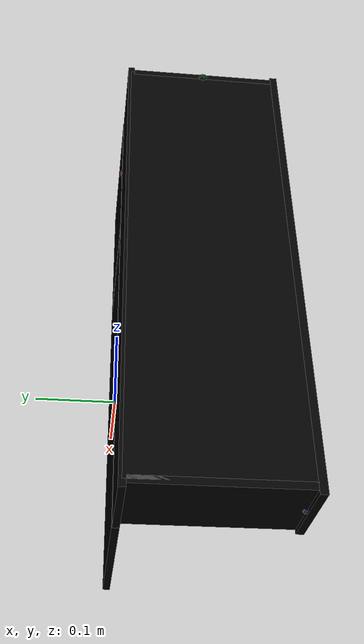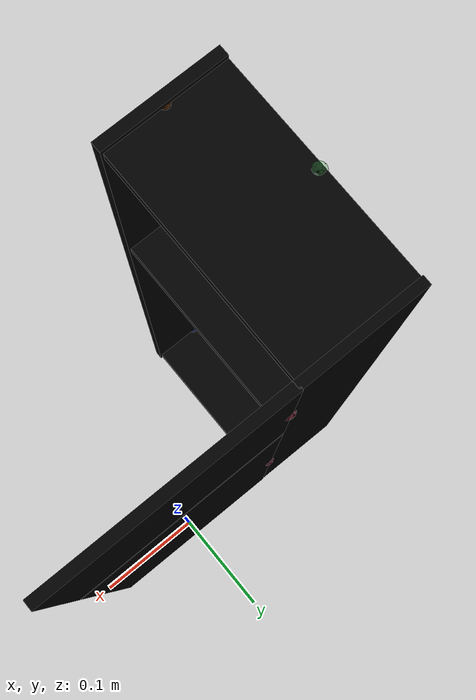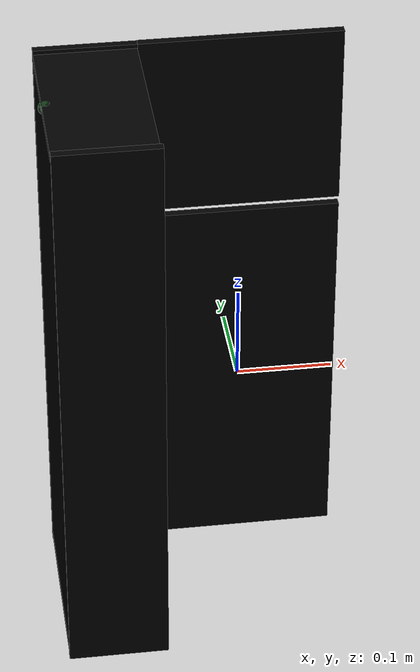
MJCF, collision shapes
<mujoco model="cabinet_bjorken_0203">
    <custom>
        <numeric data="-0.525676 0.300574 0.004203 0.49885 0.49885 0.501147 0.501147" name="0_part0_initpos"/>
        <numeric data="0.045769 0.094294 0.002087 0.5 -0.5 -0.5 -0.5" name="8_part8_initpos"/>
        <numeric data="0.267573 0.101832 0.004203 0.707107 0.707107 0.0 -0.0" name="7_part7_initpos"/>
        <numeric data="0.445945 0.119366 0.00363 0.0 0.0 0.707107 -0.707107" name="5_part5_initpos"/>
        <numeric data="-0.177244 0.307642 0.004203 1.0 0.0 -0.0 0.000819" name="4_part4_initpos"/>
        <numeric data="-0.176882 -0.220552 0.004203 1.0 0.0 0.0 -0.0" name="3_part3_initpos"/>
        <numeric data="-0.169219 0.030229 0.004203 0.999999 -0.0 -0.0 -0.001234" name="2_part2_initpos"/>
        <numeric data="-0.417963 -0.033232 0.004307 0.707107 0.707107 0.000188 0.000188" name="1_part1_initpos"/>
    </custom>
    <asset>
        <mesh file="cabinet_bjorken_0203/0.stl" name="part0" scale="0.00033333 0.00033333 0.00033333"/>
        <mesh file="cabinet_bjorken_0203/8.stl" name="part8" scale="0.00033333 0.00033333 0.00033333"/>
        <mesh file="cabinet_bjorken_0203/7.stl" name="part7" scale="0.00033333 0.00033333 0.00033333"/>
        <mesh file="cabinet_bjorken_0203/5.stl" name="part5" scale="0.00033333 0.00033333 0.00033333"/>
        <mesh file="cabinet_bjorken_0203/4.stl" name="part4" scale="0.00033333 0.00033333 0.00033333"/>
        <mesh file="cabinet_bjorken_0203/3.stl" name="part3" scale="0.00033333 0.00033333 0.00033333"/>
        <mesh file="cabinet_bjorken_0203/2.stl" name="part2" scale="0.00033333 0.00033333 0.00033333"/>
        <mesh file="cabinet_bjorken_0203/1.stl" name="part1" scale="0.00033333 0.00033333 0.00033333"/>
    </asset>
    <equality>
        <weld active="false" body1="7_part7" body2="2_part2" solimp="1 1 0.5" solref="0.01 0.3"/>
        <weld active="false" body1="7_part7" body2="4_part4" solimp="1 1 0.5" solref="0.01 0.3"/>
        <weld active="false" body1="1_part1" body2="5_part5" solimp="1 1 0.5" solref="0.01 0.3"/>
        <weld active="false" body1="0_part0" body2="5_part5" solimp="1 1 0.5" solref="0.01 0.3"/>
        <weld active="false" body1="5_part5" body2="2_part2" solimp="1 1 0.5" solref="0.01 0.3"/>
        <weld active="false" body1="7_part7" body2="3_part3" solimp="1 1 0.5" solref="0.01 0.3"/>
        <weld active="false" body1="8_part8" body2="2_part2" solimp="1 1 0.5" solref="0.01 0.3"/>
    </equality>
    <worldbody>
        <body name="0_part0" pos="0.0 -3.3333e-11 -0.0" quat="1 0 0 0">
            <geom conaffinity="0" contype="0" density="0" mesh="part0" name="0_part0_mesh" pos="0.0 0.0 0.0"
                  rgba="0.82 0.71 0.55 1" type="mesh"/>
            <site name="0_part0_horizontal_radius_site" pos="0.0 -3.3333e-11 -0.0" quat="1 0 0 0" rgba="0 0 0 0"
                  size="0.00033333"/>
            <site name="0_part0_top_site" pos="0.0 -3.3333e-11 0.205314617566626" quat="1 0 0 0" rgba="0 0 0 0"
                  size="0.00033333"/>
            <site name="0_part0_bottom_site" pos="0.0 -3.3333e-11 -0.205314617566626" quat="1 0 0 0" rgba="0 0 0 0"
                  size="0.00033333"/>
            <site name="0_part0_corner_site8" pos="-0.101598984 0.004233296566611 0.205314617566626" quat="1 0 0 0"
                  rgba="0 0 0 0" size="0.006666600000000001"/>
            <site name="0_part0_corner_site7" pos="0.101598984 0.004233296566611 0.205314617566626" quat="1 0 0 0"
                  rgba="0 0 0 0" size="0.006666600000000001"/>
            <site name="0_part0_corner_site6" pos="0.101598984 -0.004233296666610001 0.205314617566626" quat="1 0 0 0"
                  rgba="0 0 0 0" size="0.006666600000000001"/>
            <site name="0_part0_corner_site5" pos="-0.101598984 -0.004233296666610001 0.205314617566626" quat="1 0 0 0"
                  rgba="0 0 0 0" size="0.006666600000000001"/>
            <site name="0_part0_corner_site4" pos="-0.101598984 0.004233296566611 -0.205314617566626" quat="1 0 0 0"
                  rgba="0 0 0 0" size="0.006666600000000001"/>
            <site name="0_part0_corner_site3" pos="0.101598984 0.004233296566611 -0.205314617566626" quat="1 0 0 0"
                  rgba="0 0 0 0" size="0.006666600000000001"/>
            <site name="0_part0_corner_site2" pos="0.101598984 -0.004233296666610001 -0.205314617566626" quat="1 0 0 0"
                  rgba="0 0 0 0" size="0.006666600000000001"/>
            <site name="0_part0_corner_site1" pos="-0.101598984 -0.004233296666610001 -0.205314617566626" quat="1 0 0 0"
                  rgba="0 0 0 0" size="0.006666600000000001"/>
            <site name="topcover-rightwall,0,conn_site1" pos="-0.09990233429999999 0.0 0.0"
                  quat="0.7071067 0 0.7071068 0" rgba="0.9019 0.0980 0.2941 0.3" size="0.006666600000000001"/>
            <geom density="50" name="noviz_collision_0_part0_0" pos="0.0 6.6666e-09 0.0" quat="1 0 0 0" rgba="0 0 0 0"
                  size="0.101598984 0.0042333009999 0.20531461350000005" solref="0.001 1" type="box"/>
        </body>
        <body name="8_part8" pos="-0.201081322599999 -0.09736568870004302 0.09948233643335401" quat="1 0 0 0">
            <geom conaffinity="0" contype="0" density="0" mesh="part8" name="8_part8_mesh" pos="0.0 0.0 0.0"
                  rgba="0.82 0.71 0.55 1" type="mesh"/>
            <site name="8_part8_horizontal_radius_site" pos="-3.3333e-11 -7.66659e-10 -1.99998e-09" quat="1 0 0 0"
                  rgba="0 0 0 0" size="0.00033333"/>
            <site name="8_part8_top_site" pos="-3.3333e-11 -7.66659e-10 0.29633037" quat="1 0 0 0" rgba="0 0 0 0"
                  size="0.00033333"/>
            <site name="8_part8_bottom_site" pos="-3.3333e-11 -7.66659e-10 -0.29633037399996004" quat="1 0 0 0"
                  rgba="0 0 0 0" size="0.00033333"/>
            <site name="8_part8_corner_site8" pos="-0.002116645633332 0.09736569349999502 0.29633037" quat="1 0 0 0"
                  rgba="0 0 0 0" size="0.006666600000000001"/>
            <site name="8_part8_corner_site7" pos="0.002116645599999 0.09736569349999502 0.29633037" quat="1 0 0 0"
                  rgba="0 0 0 0" size="0.006666600000000001"/>
            <site name="8_part8_corner_site6" pos="0.002116645599999 -0.097365695033313 0.29633037" quat="1 0 0 0"
                  rgba="0 0 0 0" size="0.006666600000000001"/>
            <site name="8_part8_corner_site5" pos="-0.002116645633332 -0.097365695033313 0.29633037" quat="1 0 0 0"
                  rgba="0 0 0 0" size="0.006666600000000001"/>
            <site name="8_part8_corner_site4" pos="-0.002116645633332 0.09736569349999502 -0.29633037399996004"
                  quat="1 0 0 0" rgba="0 0 0 0" size="0.006666600000000001"/>
            <site name="8_part8_corner_site3" pos="0.002116645599999 0.09736569349999502 -0.29633037399996004"
                  quat="1 0 0 0" rgba="0 0 0 0" size="0.006666600000000001"/>
            <site name="8_part8_corner_site2" pos="0.002116645599999 -0.097365695033313 -0.29633037399996004"
                  quat="1 0 0 0" rgba="0 0 0 0" size="0.006666600000000001"/>
            <site name="8_part8_corner_site1" pos="-0.002116645633332 -0.097365695033313 -0.29633037399996004"
                  quat="1 0 0 0" rgba="0 0 0 0" size="0.006666600000000001"/>
            <site name="back-top,0,conn_site1" pos="0.0011833181667000002 0.0 0.296017073133" quat="1 0 0 0"
                  rgba="0.2352 0.7058 0.2941 0.3" size="0.006666600000000001"/>
            <geom density="50" name="noviz_collision_8_part8_0" pos="0.0 0.0 0.0" quat="1 0 0 0" rgba="0 0 0 0"
                  size="0.0021166388334 0.09736569300000002 0.29633037" solref="0.001 1" type="box"/>
        </body>
        <body name="7_part7" pos="-0.15239847310002902 -0.19473138293336403 0.09948234256662601" quat="1 0 0 0">
            <geom conaffinity="0" contype="0" density="0" mesh="part7" name="7_part7_mesh" pos="0.0 0.0 0.0"
                  rgba="0.82 0.71 0.55 1" type="mesh"/>
            <site name="7_part7_horizontal_radius_site" pos="0.0 3.3333e-11 0.0" quat="1 0 0 0" rgba="0 0 0 0"
                  size="0.00033333"/>
            <site name="7_part7_top_site" pos="0.0 3.3333e-11 0.304796960133252" quat="1 0 0 0" rgba="0 0 0 0"
                  size="0.00033333"/>
            <site name="7_part7_bottom_site" pos="0.0 3.3333e-11 -0.304796960133252" quat="1 0 0 0" rgba="0 0 0 0"
                  size="0.00033333"/>
            <site name="7_part7_corner_site8" pos="-0.050799495066636 0.004233293533308 0.304796960133252"
                  quat="1 0 0 0" rgba="0 0 0 0" size="0.006666600000000001"/>
            <site name="7_part7_corner_site7" pos="0.050799495066636 0.004233293533308 0.304796960133252" quat="1 0 0 0"
                  rgba="0 0 0 0" size="0.006666600000000001"/>
            <site name="7_part7_corner_site6" pos="0.050799495066636 -0.004233293466642 0.304796960133252"
                  quat="1 0 0 0" rgba="0 0 0 0" size="0.006666600000000001"/>
            <site name="7_part7_corner_site5" pos="-0.050799495066636 -0.004233293466642 0.304796960133252"
                  quat="1 0 0 0" rgba="0 0 0 0" size="0.006666600000000001"/>
            <site name="7_part7_corner_site4" pos="-0.050799495066636 0.004233293533308 -0.304796960133252"
                  quat="1 0 0 0" rgba="0 0 0 0" size="0.006666600000000001"/>
            <site name="7_part7_corner_site3" pos="0.050799495066636 0.004233293533308 -0.304796960133252"
                  quat="1 0 0 0" rgba="0 0 0 0" size="0.006666600000000001"/>
            <site name="7_part7_corner_site2" pos="0.050799495066636 -0.004233293466642 -0.304796960133252"
                  quat="1 0 0 0" rgba="0 0 0 0" size="0.006666600000000001"/>
            <site name="7_part7_corner_site1" pos="-0.050799495066636 -0.004233293466642 -0.304796960133252"
                  quat="1 0 0 0" rgba="0 0 0 0" size="0.006666600000000001"/>
            <site name="leftwall-shelf,conn_site1" pos="0.0010583194167 0.0039399639333 0.1108488915"
                  quat="0.7071067 0.7071068 0 0" rgba="1.0 0.8823 0.0980 0.3" size="0.006666600000000001"/>
            <site name="leftwall-bottom,0,conn_site1" pos="0.0 0.0038666413332000002 -0.29711369550000005"
                  quat="0.7071067 0.7071068 0 0" rgba="0.2627 0.3882 0.8470 0.3" size="0.006666600000000001"/>
            <site name="leftwall-top,0,conn_site1" pos="0.0 0.0037332993333000007 0.2951803815"
                  quat="0.7071067 0.7071068 0 0" rgba="0.9607 0.5098 0.1921 0.3" size="0.006666600000000001"/>
            <geom density="50" name="noviz_collision_7_part7_0"
                  pos="0.0008253584130000001 0.0002866804665 -9.999900000000001e-09" quat="1 0 0 0" rgba="0 0 0 0"
                  size="0.05162485041300001 0.0045199747998 0.304796952" solref="0.001 1" type="box"/>
        </body>
        <body name="5_part5" pos="-0.15239847310002902 -3.3333e-11 0.09948234256662601" quat="1 0 0 0">
            <geom conaffinity="0" contype="0" density="0" mesh="part5" name="5_part5_mesh" pos="0.0 0.0 0.0"
                  rgba="0.82 0.71 0.55 1" type="mesh"/>
            <site name="5_part5_horizontal_radius_site" pos="0.0 -3.3333e-11 0.0" quat="1 0 0 0" rgba="0 0 0 0"
                  size="0.00033333"/>
            <site name="5_part5_top_site" pos="0.0 -3.3333e-11 0.304796960133252" quat="1 0 0 0" rgba="0 0 0 0"
                  size="0.00033333"/>
            <site name="5_part5_bottom_site" pos="0.0 -3.3333e-11 -0.304796960133252" quat="1 0 0 0" rgba="0 0 0 0"
                  size="0.00033333"/>
            <site name="5_part5_corner_site8" pos="-0.050799495066636 0.004233296566611 0.304796960133252"
                  quat="1 0 0 0" rgba="0 0 0 0" size="0.006666600000000001"/>
            <site name="5_part5_corner_site7" pos="0.050799495066636 0.004233296566611 0.304796960133252" quat="1 0 0 0"
                  rgba="0 0 0 0" size="0.006666600000000001"/>
            <site name="5_part5_corner_site6" pos="0.050799495066636 -0.004233296666610001 0.304796960133252"
                  quat="1 0 0 0" rgba="0 0 0 0" size="0.006666600000000001"/>
            <site name="5_part5_corner_site5" pos="-0.050799495066636 -0.004233296666610001 0.304796960133252"
                  quat="1 0 0 0" rgba="0 0 0 0" size="0.006666600000000001"/>
            <site name="5_part5_corner_site4" pos="-0.050799495066636 0.004233296566611 -0.304796960133252"
                  quat="1 0 0 0" rgba="0 0 0 0" size="0.006666600000000001"/>
            <site name="5_part5_corner_site3" pos="0.050799495066636 0.004233296566611 -0.304796960133252"
                  quat="1 0 0 0" rgba="0 0 0 0" size="0.006666600000000001"/>
            <site name="5_part5_corner_site2" pos="0.050799495066636 -0.004233296666610001 -0.304796960133252"
                  quat="1 0 0 0" rgba="0 0 0 0" size="0.006666600000000001"/>
            <site name="5_part5_corner_site1" pos="-0.050799495066636 -0.004233296666610001 -0.304796960133252"
                  quat="1 0 0 0" rgba="0 0 0 0" size="0.006666600000000001"/>
            <site name="rightwall-top,0,conn_site1" pos="0.0 -0.003866628 0.2936470635" quat="0.7071067 -0.7071068 0 0"
                  rgba="0.5686 0.1176 0.7058 0.3" size="0.006666600000000001"/>
            <site name="rightwall-topcover,0,conn_site2" pos="0.051832815000000004 -0.000166665 0.2068479315"
                  quat="0.7071067 0 0.7071068 0" rgba="0.9019 0.0980 0.2941 0.3" size="0.006666600000000001"/>
            <site name="rightwall-topcover,0,conn_site1" pos="0.052496141700000006 0.0 -0.0994823385"
                  quat="0.7071067 0 0.7071068 0" rgba="0.9019 0.0980 0.2941 0.3" size="0.006666600000000001"/>
            <geom density="50" name="noviz_collision_5_part5_0"
                  pos="0.0008253584130000001 -0.00028667046660000006 -9.999900000000001e-09" quat="1 0 0 0"
                  rgba="0 0 0 0" size="0.05162485041300001 0.0039466272 0.304796952" solref="0.001 1" type="box"/>
        </body>
        <body name="4_part4" pos="-0.150281830666665 -0.097365693266664 0.209547908599959" quat="1 0 0 0">
            <geom conaffinity="0" contype="0" density="0" mesh="part4" name="4_part4_mesh" pos="0.0 0.0 0.0"
                  rgba="0.82 0.71 0.55 1" type="mesh"/>
            <site name="4_part4_horizontal_radius_site" pos="0.0 -2.299977e-09 3.3333e-11" quat="1 0 0 0" rgba="0 0 0 0"
                  size="0.00033333"/>
            <site name="4_part4_top_site" pos="0.0 -2.299977e-09 0.004233299199918001" quat="1 0 0 0" rgba="0 0 0 0"
                  size="0.00033333"/>
            <site name="4_part4_bottom_site" pos="0.0 -2.299977e-09 -0.004233299133252001" quat="1 0 0 0" rgba="0 0 0 0"
                  size="0.00033333"/>
            <site name="4_part4_corner_site8" pos="-0.048682852599939 0.09313240553329799 0.004233299199918001"
                  quat="1 0 0 0" rgba="0 0 0 0" size="0.006666600000000001"/>
            <site name="4_part4_corner_site7" pos="0.048682852599939 0.09313240553329799 0.004233299199918001"
                  quat="1 0 0 0" rgba="0 0 0 0" size="0.006666600000000001"/>
            <site name="4_part4_corner_site6" pos="0.048682852599939 -0.093132410133252 0.004233299199918001"
                  quat="1 0 0 0" rgba="0 0 0 0" size="0.006666600000000001"/>
            <site name="4_part4_corner_site5" pos="-0.048682852599939 -0.093132410133252 0.004233299199918001"
                  quat="1 0 0 0" rgba="0 0 0 0" size="0.006666600000000001"/>
            <site name="4_part4_corner_site4" pos="-0.048682852599939 0.09313240553329799 -0.004233299133252001"
                  quat="1 0 0 0" rgba="0 0 0 0" size="0.006666600000000001"/>
            <site name="4_part4_corner_site3" pos="0.048682852599939 0.09313240553329799 -0.004233299133252001"
                  quat="1 0 0 0" rgba="0 0 0 0" size="0.006666600000000001"/>
            <site name="4_part4_corner_site2" pos="0.048682852599939 -0.093132410133252 -0.004233299133252001"
                  quat="1 0 0 0" rgba="0 0 0 0" size="0.006666600000000001"/>
            <site name="4_part4_corner_site1" pos="-0.048682852599939 -0.093132410133252 -0.004233299133252001"
                  quat="1 0 0 0" rgba="0 0 0 0" size="0.006666600000000001"/>
            <site name="shelf-leftwall,conn_site1" pos="-0.0010583194167 -0.09342573239999999 0.0007833188334000001"
                  quat="0.7071067 0.7071068 0 0" rgba="1.0 0.8823 0.0980 0.3" size="0.006666600000000001"/>
            <geom density="50" name="noviz_collision_4_part4_0"
                  pos="-9.45923874e-05 9.999900000000001e-09 -1.9999800000000003e-08" quat="1 0 0 0" rgba="0 0 0 0"
                  size="0.04858824744600001 0.093132402 0.0042332743335" solref="0.001 1" type="box"/>
        </body>
        <body name="3_part3" pos="-0.15239847310002902 -0.097365693266664 -0.19684803556662603" quat="1 0 0 0">
            <geom conaffinity="0" contype="0" density="0" mesh="part3" name="3_part3_mesh" pos="0.0 0.0 0.0"
                  rgba="0.82 0.71 0.55 1" type="mesh"/>
            <site name="3_part3_horizontal_radius_site" pos="0.0 -2.299977e-09 3.3333e-11" quat="1 0 0 0" rgba="0 0 0 0"
                  size="0.00033333"/>
            <site name="3_part3_top_site" pos="0.0 -2.299977e-09 0.0042332910333330006" quat="1 0 0 0" rgba="0 0 0 0"
                  size="0.00033333"/>
            <site name="3_part3_bottom_site" pos="0.0 -2.299977e-09 -0.004233290966667001" quat="1 0 0 0" rgba="0 0 0 0"
                  size="0.00033333"/>
            <site name="3_part3_corner_site8" pos="-0.050799495066636 0.09313240553329799 0.0042332910333330006"
                  quat="1 0 0 0" rgba="0 0 0 0" size="0.006666600000000001"/>
            <site name="3_part3_corner_site7" pos="0.050799495066636 0.09313240553329799 0.0042332910333330006"
                  quat="1 0 0 0" rgba="0 0 0 0" size="0.006666600000000001"/>
            <site name="3_part3_corner_site6" pos="0.050799495066636 -0.093132410133252 0.0042332910333330006"
                  quat="1 0 0 0" rgba="0 0 0 0" size="0.006666600000000001"/>
            <site name="3_part3_corner_site5" pos="-0.050799495066636 -0.093132410133252 0.0042332910333330006"
                  quat="1 0 0 0" rgba="0 0 0 0" size="0.006666600000000001"/>
            <site name="3_part3_corner_site4" pos="-0.050799495066636 0.09313240553329799 -0.004233290966667001"
                  quat="1 0 0 0" rgba="0 0 0 0" size="0.006666600000000001"/>
            <site name="3_part3_corner_site3" pos="0.050799495066636 0.09313240553329799 -0.004233290966667001"
                  quat="1 0 0 0" rgba="0 0 0 0" size="0.006666600000000001"/>
            <site name="3_part3_corner_site2" pos="0.050799495066636 -0.093132410133252 -0.004233290966667001"
                  quat="1 0 0 0" rgba="0 0 0 0" size="0.006666600000000001"/>
            <site name="3_part3_corner_site1" pos="-0.050799495066636 -0.093132410133252 -0.004233290966667001"
                  quat="1 0 0 0" rgba="0 0 0 0" size="0.006666600000000001"/>
            <site name="bottom-leftwall,0,conn_site1" pos="0.0 -0.09349906500000002 -0.0007833388332"
                  quat="0.7071067 0.7071068 0 0" rgba="0.2627 0.3882 0.8470 0.3" size="0.006666600000000001"/>
            <geom density="50" name="noviz_collision_3_part3_0"
                  pos="-0.0001549451172 9.999900000000001e-09 1.93264734e-05" quat="1 0 0 0" rgba="0 0 0 0"
                  size="0.05064456021600001 0.093132402 0.00425262414" solref="0.001 1" type="box"/>
        </body>
        <body name="2_part2" pos="-0.15239847310002902 -0.097365693266664 0.395812696266789" quat="1 0 0 0">
            <geom conaffinity="0" contype="0" density="0" mesh="part2" name="2_part2_mesh" pos="0.0 0.0 0.0"
                  rgba="0.82 0.71 0.55 1" type="mesh"/>
            <site name="2_part2_horizontal_radius_site" pos="0.0 -2.299977e-09 -3.3333e-11" quat="1 0 0 0"
                  rgba="0 0 0 0" size="0.00033333"/>
            <site name="2_part2_top_site" pos="0.0 -2.299977e-09 0.004233299133252001" quat="1 0 0 0" rgba="0 0 0 0"
                  size="0.00033333"/>
            <site name="2_part2_bottom_site" pos="0.0 -2.299977e-09 -0.004233299199918001" quat="1 0 0 0" rgba="0 0 0 0"
                  size="0.00033333"/>
            <site name="2_part2_corner_site8" pos="-0.050799495066636 0.09313240553329799 0.004233299133252001"
                  quat="1 0 0 0" rgba="0 0 0 0" size="0.006666600000000001"/>
            <site name="2_part2_corner_site7" pos="0.050799495066636 0.09313240553329799 0.004233299133252001"
                  quat="1 0 0 0" rgba="0 0 0 0" size="0.006666600000000001"/>
            <site name="2_part2_corner_site6" pos="0.050799495066636 -0.093132410133252 0.004233299133252001"
                  quat="1 0 0 0" rgba="0 0 0 0" size="0.006666600000000001"/>
            <site name="2_part2_corner_site5" pos="-0.050799495066636 -0.093132410133252 0.004233299133252001"
                  quat="1 0 0 0" rgba="0 0 0 0" size="0.006666600000000001"/>
            <site name="2_part2_corner_site4" pos="-0.050799495066636 0.09313240553329799 -0.004233299199918001"
                  quat="1 0 0 0" rgba="0 0 0 0" size="0.006666600000000001"/>
            <site name="2_part2_corner_site3" pos="0.050799495066636 0.09313240553329799 -0.004233299199918001"
                  quat="1 0 0 0" rgba="0 0 0 0" size="0.006666600000000001"/>
            <site name="2_part2_corner_site2" pos="0.050799495066636 -0.093132410133252 -0.004233299199918001"
                  quat="1 0 0 0" rgba="0 0 0 0" size="0.006666600000000001"/>
            <site name="2_part2_corner_site1" pos="-0.050799495066636 -0.093132410133252 -0.004233299199918001"
                  quat="1 0 0 0" rgba="0 0 0 0" size="0.006666600000000001"/>
            <site name="top-leftwall,0,conn_site1" pos="0.0 -0.09363239699999999 -0.0011499718335"
                  quat="0.7071067 0.7071068 0 0" rgba="0.9607 0.5098 0.1921 0.3" size="0.006666600000000001"/>
            <site name="top-back,0,conn_site1" pos="-0.04749952500000001 9.999900000000001e-09 -0.0003133102002"
                  quat="1 0 0 0" rgba="0.2352 0.7058 0.2941 0.3" size="0.006666600000000001"/>
            <site name="top-rightwall,0,conn_site1" pos="0.0 0.09349906500000002 -0.0026832831669"
                  quat="0.7071067 -0.7071068 0 0" rgba="0.5686 0.1176 0.7058 0.3" size="0.006666600000000001"/>
            <geom density="50" name="noviz_collision_2_part2_0"
                  pos="-0.0001549451172 9.999900000000001e-09 -1.93264734e-05" quat="1 0 0 0" rgba="0 0 0 0"
                  size="0.05064456021600001 0.093132402 0.0042139878597" solref="0.001 1" type="box"/>
        </body>
        <body name="1_part1" pos="0.0 -3.3333e-11 0.309030248099949" quat="1 0 0 0">
            <geom conaffinity="0" contype="0" density="0" mesh="part1" name="1_part1_mesh" pos="0.0 0.0 0.0"
                  rgba="0.82 0.71 0.55 1" type="mesh"/>
            <site name="1_part1_horizontal_radius_site" pos="0.0 -3.3333e-11 1.033323e-09" quat="1 0 0 0" rgba="0 0 0 0"
                  size="0.00033333"/>
            <site name="1_part1_top_site" pos="0.0 -3.3333e-11 0.095249057666565" quat="1 0 0 0" rgba="0 0 0 0"
                  size="0.00033333"/>
            <site name="1_part1_bottom_site" pos="0.0 -3.3333e-11 -0.09524905563325199" quat="1 0 0 0" rgba="0 0 0 0"
                  size="0.00033333"/>
            <site name="1_part1_corner_site8" pos="-0.101598984 0.004233296566611 0.095249057666565" quat="1 0 0 0"
                  rgba="0 0 0 0" size="0.006666600000000001"/>
            <site name="1_part1_corner_site7" pos="0.101598984 0.004233296566611 0.095249057666565" quat="1 0 0 0"
                  rgba="0 0 0 0" size="0.006666600000000001"/>
            <site name="1_part1_corner_site6" pos="0.101598984 -0.004233296666610001 0.095249057666565" quat="1 0 0 0"
                  rgba="0 0 0 0" size="0.006666600000000001"/>
            <site name="1_part1_corner_site5" pos="-0.101598984 -0.004233296666610001 0.095249057666565" quat="1 0 0 0"
                  rgba="0 0 0 0" size="0.006666600000000001"/>
            <site name="1_part1_corner_site4" pos="-0.101598984 0.004233296566611 -0.09524905563325199" quat="1 0 0 0"
                  rgba="0 0 0 0" size="0.006666600000000001"/>
            <site name="1_part1_corner_site3" pos="0.101598984 0.004233296566611 -0.09524905563325199" quat="1 0 0 0"
                  rgba="0 0 0 0" size="0.006666600000000001"/>
            <site name="1_part1_corner_site2" pos="0.101598984 -0.004233296666610001 -0.09524905563325199"
                  quat="1 0 0 0" rgba="0 0 0 0" size="0.006666600000000001"/>
            <site name="1_part1_corner_site1" pos="-0.101598984 -0.004233296666610001 -0.09524905563325199"
                  quat="1 0 0 0" rgba="0 0 0 0" size="0.006666600000000001"/>
            <site name="topcover-rightwall,0,conn_site2" pos="-0.100565661 -0.000166665 -0.0026999863332"
                  quat="0.7071067 0 0.7071068 0" rgba="0.9019 0.0980 0.2941 0.3" size="0.006666600000000001"/>
            <geom density="50" name="noviz_collision_1_part1_0" pos="0.0 6.6666e-09 -1.9999800000000003e-08"
                  quat="1 0 0 0" rgba="0 0 0 0" size="0.101598984 0.0042333009999 0.0952490475" solref="0.001 1"
                  type="box"/>
        </body>
    </worldbody>
    <actuator/>
    <sensor/>
    <contact/>
    <default/>
</mujoco>
